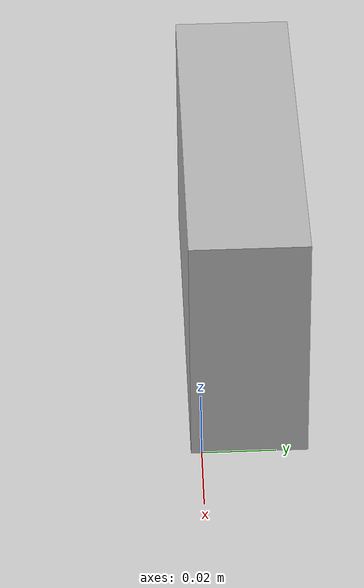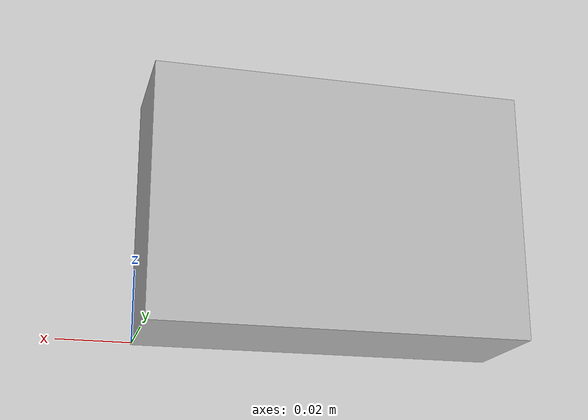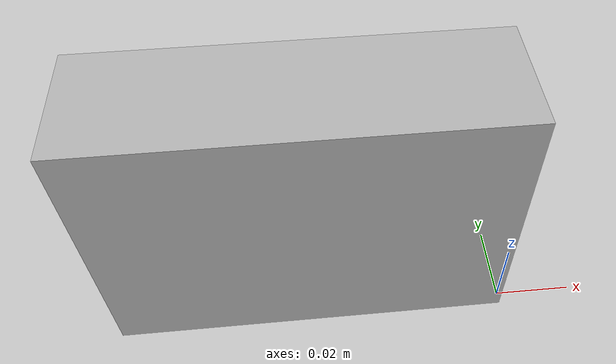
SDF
<?xml version="1.0" ?>
<sdf version="1.4">
  <model name="sugar">
    <link name="sugar_link">
      <inertial>
        <pose>-0.00 0.0 -0.00 0 0 0</pose>
        <mass>0.8</mass>
        <inertia>
          <ixx>0.001667</ixx>
	  <ixy>0.0</ixy>
	  <ixz>0.0</ixz>
	  <iyy>0.001667</iyy>
	  <iyz>0.0</iyz>
	  <izz>0.001667</izz>
	</inertia>
      </inertial>

      <visual name="sugar_visual">
        <pose>0 0 0 0 -1.57079632679489 0 </pose>
        <material>
          <lighting>1</lighting>
          <script>
            <uri>model://sugar/materials/scripts</uri>
            <uri>model://sugar/materials/textures</uri>
            <name>Sugar/Image</name>
          </script>
        </material>
        <geometry>
          <mesh>
            <uri>model://sugar/meshes/sugar.dae</uri>
            <scale>0.9 0.9 0.8</scale>
          </mesh>
        </geometry>
      </visual>

      <collision name="sugar_collision">
        <pose>0.0 0.0 0.0 0.0 -1.57079632679489 0.0</pose>
        <geometry>
          <box>
            <size>0.04 0.066 0.098</size>
          </box>
        </geometry>
        <max_contacts>10</max_contacts>
        <surface>
          <contact>
            <ode/>
          </contact>
          <bounce/>
          <friction>
            <torsional>
              <ode/>
            </torsional>
            <ode>
              <mu>1.0</mu>
              <mu2>1.0</mu2>
            </ode>
          </friction>
        </surface>
      </collision>
      <self_collide>0</self_collide>
      <kinematic>0</kinematic>
    </link>
  </model>
</sdf>
